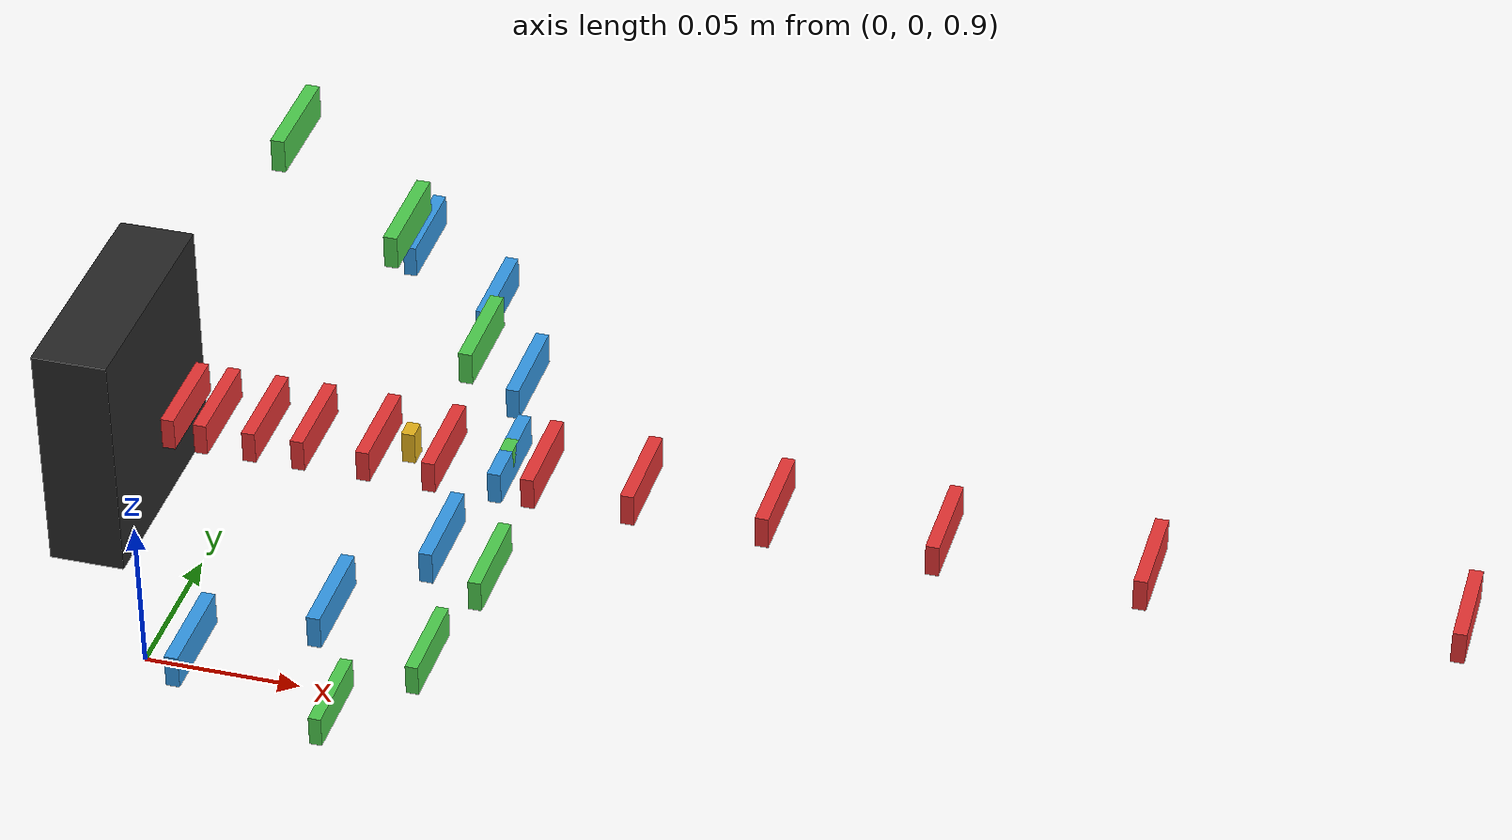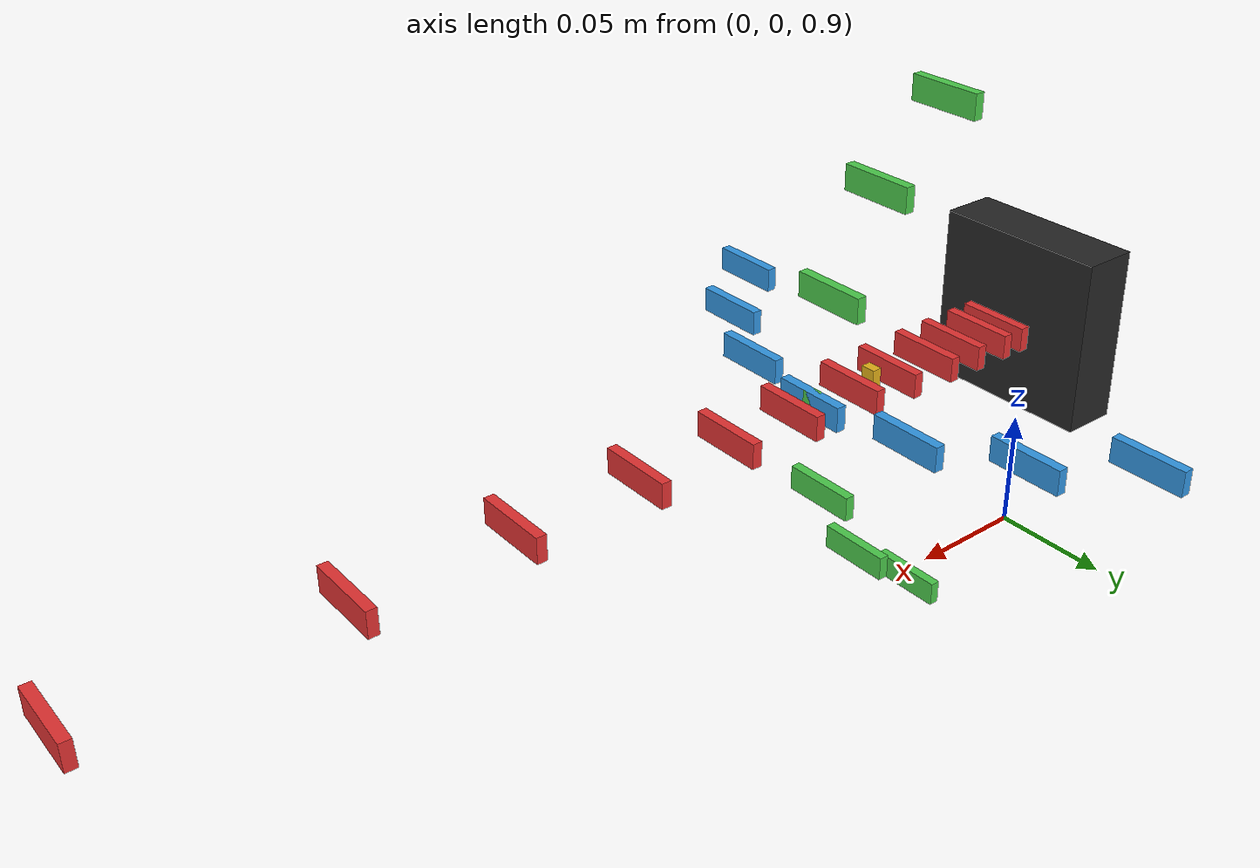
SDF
<?xml version="1.0" ?>
<sdf version="1.6">
  <world name="rfid_bench">

    <physics name="1ms" type="ignored">
      <max_step_size>0.001</max_step_size>
      <real_time_factor>1.0</real_time_factor>
    </physics>

    <plugin filename="ignition-gazebo-physics-system"
            name="ignition::gazebo::systems::Physics"/>
    <plugin filename="ignition-gazebo-user-commands-system"
            name="ignition::gazebo::systems::UserCommands"/>
    <plugin filename="ignition-gazebo-scene-broadcaster-system"
            name="ignition::gazebo::systems::SceneBroadcaster"/>

    <light type="directional" name="sun">
      <cast_shadows>true</cast_shadows>
      <pose>0 0 10 0 0 0</pose>
      <diffuse>0.8 0.8 0.8 1</diffuse>
      <specular>0.2 0.2 0.2 1</specular>
      <direction>-0.5 0.1 -0.9</direction>
    </light>

    <model name="ground_plane">
      <static>true</static>
      <link name="link">
        <collision name="collision">
          <geometry><plane><normal>0 0 1</normal><size>10 10</size></plane></geometry>
        </collision>
        <visual name="visual">
          <geometry><plane><normal>0 0 1</normal><size>10 10</size></plane></geometry>
          <material>
            <ambient>0.3 0.3 0.3 1</ambient>
            <diffuse>0.4 0.4 0.4 1</diffuse>
          </material>
        </visual>
      </link>
    </model>

    <model name="bench_fixture">
      <static>true</static>
      <pose>0 0 1.0 0 0 0</pose>
      <link name="mount">
        <visual name="visual">
          <!-- Iron is 72 x 72 x 23 mm, drawn to scale. The antenna is
               modeled as a point at the link origin; Test F corrects for
               that simplification. -->
          <geometry><box><size>0.023 0.072 0.072</size></box></geometry>
          <material>
            <ambient>0.1 0.1 0.1 1</ambient>
            <diffuse>0.15 0.15 0.15 1</diffuse>
          </material>
        </visual>
      </link>

      <plugin filename="RfidReader" name="rfid::RfidReader">
        <reader_id>vulcan_iron_bench</reader_id>
        <tag_prefix>rfid_tag_</tag_prefix>
        <update_rate>10</update_rate>
        <multiplex>true</multiplex>
        <max_range>0.6</max_range>     <!-- compute guard; past the ladder -->
        <pd_max>0.99</pd_max>
        <topic>/rfid/reads</topic>
        <seed>42</seed>

        <publish_tf>true</publish_tf>
        <tf_topic>/rfid/tf</tf_topic>
        <tf_position_noise_stddev>0.0</tf_position_noise_stddev>

        <power_topic>/rfid/set_power</power_topic>
        <p_ref>27.0</p_ref>
        <p_min>0.0</p_min>
        <p_max>27.0</p_max>
        <power_step>0.5</power_step>

        <rssi_noise_stddev>1.5</rssi_noise_stddev>
        <tag_offset_stddev>0.0</tag_offset_stddev>

        <!-- Harmless here (the bench knows its tag population), but kept
             false so the record path matches the mission one. -->
        <report_n_tags>false</report_n_tags>

        <antenna>
          <name>bench</name>            <!-- TF frame: rfid_antenna_bench -->
          <link>mount</link>
          <pose>0 0 0 0 0 0</pose>
          <r0>0.11</r0>
          <delta_theta_h>80</delta_theta_h>
          <delta_theta_v>80</delta_theta_v>
          <rssi_r0>-45.0</rssi_r0>
          <power_dbm>27.0</power_dbm>
        </antenna>
      </plugin>
    </model>

    <!-- ===================== RANGE LADDER (Test A) =====================
         Boresight, theta = 0. Geometric spacing so the PD transition is
         sampled at every power in the sweep. -->

    <model name="rfid_tag_lad_020"><static>true</static><pose>0.020 0 1.0 0 0 0</pose>
      <link name="tag_link"><visual name="visual">
        <geometry><box><size>0.004 0.03 0.01</size></box></geometry>
        <material><ambient>0.9 0.2 0.2 1</ambient><diffuse>0.9 0.2 0.2 1</diffuse></material>
      </visual></link></model>

    <model name="rfid_tag_lad_030"><static>true</static><pose>0.030 0 1.0 0 0 0</pose>
      <link name="tag_link"><visual name="visual">
        <geometry><box><size>0.004 0.03 0.01</size></box></geometry>
        <material><ambient>0.9 0.2 0.2 1</ambient><diffuse>0.9 0.2 0.2 1</diffuse></material>
      </visual></link></model>

    <model name="rfid_tag_lad_045"><static>true</static><pose>0.045 0 1.0 0 0 0</pose>
      <link name="tag_link"><visual name="visual">
        <geometry><box><size>0.004 0.03 0.01</size></box></geometry>
        <material><ambient>0.9 0.2 0.2 1</ambient><diffuse>0.9 0.2 0.2 1</diffuse></material>
      </visual></link></model>

    <model name="rfid_tag_lad_060"><static>true</static><pose>0.060 0 1.0 0 0 0</pose>
      <link name="tag_link"><visual name="visual">
        <geometry><box><size>0.004 0.03 0.01</size></box></geometry>
        <material><ambient>0.9 0.2 0.2 1</ambient><diffuse>0.9 0.2 0.2 1</diffuse></material>
      </visual></link></model>

    <model name="rfid_tag_lad_080"><static>true</static><pose>0.080 0 1.0 0 0 0</pose>
      <link name="tag_link"><visual name="visual">
        <geometry><box><size>0.004 0.03 0.01</size></box></geometry>
        <material><ambient>0.9 0.2 0.2 1</ambient><diffuse>0.9 0.2 0.2 1</diffuse></material>
      </visual></link></model>

    <model name="rfid_tag_lad_100"><static>true</static><pose>0.100 0 1.0 0 0 0</pose>
      <link name="tag_link"><visual name="visual">
        <geometry><box><size>0.004 0.03 0.01</size></box></geometry>
        <material><ambient>0.9 0.2 0.2 1</ambient><diffuse>0.9 0.2 0.2 1</diffuse></material>
      </visual></link></model>

    <model name="rfid_tag_lad_130"><static>true</static><pose>0.130 0 1.0 0 0 0</pose>
      <link name="tag_link"><visual name="visual">
        <geometry><box><size>0.004 0.03 0.01</size></box></geometry>
        <material><ambient>0.9 0.2 0.2 1</ambient><diffuse>0.9 0.2 0.2 1</diffuse></material>
      </visual></link></model>

    <model name="rfid_tag_lad_160"><static>true</static><pose>0.160 0 1.0 0 0 0</pose>
      <link name="tag_link"><visual name="visual">
        <geometry><box><size>0.004 0.03 0.01</size></box></geometry>
        <material><ambient>0.9 0.2 0.2 1</ambient><diffuse>0.9 0.2 0.2 1</diffuse></material>
      </visual></link></model>

    <model name="rfid_tag_lad_200"><static>true</static><pose>0.200 0 1.0 0 0 0</pose>
      <link name="tag_link"><visual name="visual">
        <geometry><box><size>0.004 0.03 0.01</size></box></geometry>
        <material><ambient>0.9 0.2 0.2 1</ambient><diffuse>0.9 0.2 0.2 1</diffuse></material>
      </visual></link></model>

    <model name="rfid_tag_lad_250"><static>true</static><pose>0.250 0 1.0 0 0 0</pose>
      <link name="tag_link"><visual name="visual">
        <geometry><box><size>0.004 0.03 0.01</size></box></geometry>
        <material><ambient>0.9 0.2 0.2 1</ambient><diffuse>0.9 0.2 0.2 1</diffuse></material>
      </visual></link></model>

    <model name="rfid_tag_lad_310"><static>true</static><pose>0.310 0 1.0 0 0 0</pose>
      <link name="tag_link"><visual name="visual">
        <geometry><box><size>0.004 0.03 0.01</size></box></geometry>
        <material><ambient>0.9 0.2 0.2 1</ambient><diffuse>0.9 0.2 0.2 1</diffuse></material>
      </visual></link></model>

    <model name="rfid_tag_lad_400"><static>true</static><pose>0.400 0 1.0 0 0 0</pose>
      <link name="tag_link"><visual name="visual">
        <geometry><box><size>0.004 0.03 0.01</size></box></geometry>
        <material><ambient>0.9 0.2 0.2 1</ambient><diffuse>0.9 0.2 0.2 1</diffuse></material>
      </visual></link></model>

    <!-- ===================== AZIMUTH ARC (Test D) =====================
         r = 0.12 m, theta_V = 0. Positions are r*(cos t, sin t, 0).     -->

    <model name="rfid_tag_haz_000"><static>true</static><pose>0.120000 0.000000 1.0 0 0 0</pose>
      <link name="tag_link"><visual name="visual">
        <geometry><box><size>0.004 0.03 0.01</size></box></geometry>
        <material><ambient>0.2 0.6 0.9 1</ambient><diffuse>0.2 0.6 0.9 1</diffuse></material>
      </visual></link></model>

    <model name="rfid_tag_haz_p20"><static>true</static><pose>0.112763 0.041042 1.0 0 0 0</pose>
      <link name="tag_link"><visual name="visual">
        <geometry><box><size>0.004 0.03 0.01</size></box></geometry>
        <material><ambient>0.2 0.6 0.9 1</ambient><diffuse>0.2 0.6 0.9 1</diffuse></material>
      </visual></link></model>

    <model name="rfid_tag_haz_n20"><static>true</static><pose>0.112763 -0.041042 1.0 0 0 0</pose>
      <link name="tag_link"><visual name="visual">
        <geometry><box><size>0.004 0.03 0.01</size></box></geometry>
        <material><ambient>0.2 0.6 0.9 1</ambient><diffuse>0.2 0.6 0.9 1</diffuse></material>
      </visual></link></model>

    <model name="rfid_tag_haz_p40"><static>true</static><pose>0.091925 0.077135 1.0 0 0 0</pose>
      <link name="tag_link"><visual name="visual">
        <geometry><box><size>0.004 0.03 0.01</size></box></geometry>
        <material><ambient>0.2 0.6 0.9 1</ambient><diffuse>0.2 0.6 0.9 1</diffuse></material>
      </visual></link></model>

    <model name="rfid_tag_haz_n40"><static>true</static><pose>0.091925 -0.077135 1.0 0 0 0</pose>
      <link name="tag_link"><visual name="visual">
        <geometry><box><size>0.004 0.03 0.01</size></box></geometry>
        <material><ambient>0.2 0.6 0.9 1</ambient><diffuse>0.2 0.6 0.9 1</diffuse></material>
      </visual></link></model>

    <model name="rfid_tag_haz_p60"><static>true</static><pose>0.060000 0.103923 1.0 0 0 0</pose>
      <link name="tag_link"><visual name="visual">
        <geometry><box><size>0.004 0.03 0.01</size></box></geometry>
        <material><ambient>0.2 0.6 0.9 1</ambient><diffuse>0.2 0.6 0.9 1</diffuse></material>
      </visual></link></model>

    <model name="rfid_tag_haz_n60"><static>true</static><pose>0.060000 -0.103923 1.0 0 0 0</pose>
      <link name="tag_link"><visual name="visual">
        <geometry><box><size>0.004 0.03 0.01</size></box></geometry>
        <material><ambient>0.2 0.6 0.9 1</ambient><diffuse>0.2 0.6 0.9 1</diffuse></material>
      </visual></link></model>

    <model name="rfid_tag_vel_000"><static>true</static><pose>0.120000 0 1.000000 0 0 0</pose>
      <link name="tag_link"><visual name="visual">
        <geometry><box><size>0.004 0.006 0.01</size></box></geometry>
        <material><ambient>0.3 0.8 0.3 1</ambient><diffuse>0.3 0.8 0.3 1</diffuse></material>
      </visual></link></model>

    <model name="rfid_tag_vel_p20"><static>true</static><pose>0.112763 0 1.041042 0 0 0</pose>
      <link name="tag_link"><visual name="visual">
        <geometry><box><size>0.004 0.03 0.01</size></box></geometry>
        <material><ambient>0.3 0.8 0.3 1</ambient><diffuse>0.3 0.8 0.3 1</diffuse></material>
      </visual></link></model>

    <model name="rfid_tag_vel_n20"><static>true</static><pose>0.112763 0 0.958958 0 0 0</pose>
      <link name="tag_link"><visual name="visual">
        <geometry><box><size>0.004 0.03 0.01</size></box></geometry>
        <material><ambient>0.3 0.8 0.3 1</ambient><diffuse>0.3 0.8 0.3 1</diffuse></material>
      </visual></link></model>

    <model name="rfid_tag_vel_p40"><static>true</static><pose>0.091925 0 1.077135 0 0 0</pose>
      <link name="tag_link"><visual name="visual">
        <geometry><box><size>0.004 0.03 0.01</size></box></geometry>
        <material><ambient>0.3 0.8 0.3 1</ambient><diffuse>0.3 0.8 0.3 1</diffuse></material>
      </visual></link></model>

    <model name="rfid_tag_vel_n40"><static>true</static><pose>0.091925 0 0.922865 0 0 0</pose>
      <link name="tag_link"><visual name="visual">
        <geometry><box><size>0.004 0.03 0.01</size></box></geometry>
        <material><ambient>0.3 0.8 0.3 1</ambient><diffuse>0.3 0.8 0.3 1</diffuse></material>
      </visual></link></model>

    <model name="rfid_tag_vel_p60"><static>true</static><pose>0.060000 0 1.103923 0 0 0</pose>
      <link name="tag_link"><visual name="visual">
        <geometry><box><size>0.004 0.03 0.01</size></box></geometry>
        <material><ambient>0.3 0.8 0.3 1</ambient><diffuse>0.3 0.8 0.3 1</diffuse></material>
      </visual></link></model>

    <model name="rfid_tag_vel_n60"><static>true</static><pose>0.060000 0 0.896077 0 0 0</pose>
      <link name="tag_link"><visual name="visual">
        <geometry><box><size>0.004 0.03 0.01</size></box></geometry>
        <material><ambient>0.3 0.8 0.3 1</ambient><diffuse>0.3 0.8 0.3 1</diffuse></material>
      </visual></link></model>

    <model name="rfid_tag_clu_00"><static>true</static><pose>0.090 0 1.0 0 0 0</pose>
      <link name="tag_link"><visual name="visual">
        <geometry><box><size>0.004 0.006 0.01</size></box></geometry>
        <material><ambient>0.9 0.7 0.1 1</ambient><diffuse>0.9 0.7 0.1 1</diffuse></material>
      </visual></link></model>

    <model name="rfid_tag_clu_01"><static>true</static><pose>0.090 0 1.0 0 0 0</pose>
      <link name="tag_link"><visual name="visual">
        <geometry><box><size>0.004 0.006 0.01</size></box></geometry>
        <material><ambient>0.9 0.7 0.1 1</ambient><diffuse>0.9 0.7 0.1 1</diffuse></material>
      </visual></link></model>

    <model name="rfid_tag_clu_02"><static>true</static><pose>0.090 0 1.0 0 0 0</pose>
      <link name="tag_link"><visual name="visual">
        <geometry><box><size>0.004 0.006 0.01</size></box></geometry>
        <material><ambient>0.9 0.7 0.1 1</ambient><diffuse>0.9 0.7 0.1 1</diffuse></material>
      </visual></link></model>

    <model name="rfid_tag_clu_03"><static>true</static><pose>0.090 0 1.0 0 0 0</pose>
      <link name="tag_link"><visual name="visual">
        <geometry><box><size>0.004 0.006 0.01</size></box></geometry>
        <material><ambient>0.9 0.7 0.1 1</ambient><diffuse>0.9 0.7 0.1 1</diffuse></material>
      </visual></link></model>

    <model name="rfid_tag_clu_04"><static>true</static><pose>0.090 0 1.0 0 0 0</pose>
      <link name="tag_link"><visual name="visual">
        <geometry><box><size>0.004 0.006 0.01</size></box></geometry>
        <material><ambient>0.9 0.7 0.1 1</ambient><diffuse>0.9 0.7 0.1 1</diffuse></material>
      </visual></link></model>

    <model name="rfid_tag_clu_05"><static>true</static><pose>0.090 0 1.0 0 0 0</pose>
      <link name="tag_link"><visual name="visual">
        <geometry><box><size>0.004 0.006 0.01</size></box></geometry>
        <material><ambient>0.9 0.7 0.1 1</ambient><diffuse>0.9 0.7 0.1 1</diffuse></material>
      </visual></link></model>

    <model name="rfid_tag_clu_06"><static>true</static><pose>0.090 0 1.0 0 0 0</pose>
      <link name="tag_link"><visual name="visual">
        <geometry><box><size>0.004 0.006 0.01</size></box></geometry>
        <material><ambient>0.9 0.7 0.1 1</ambient><diffuse>0.9 0.7 0.1 1</diffuse></material>
      </visual></link></model>

    <model name="rfid_tag_clu_07"><static>true</static><pose>0.090 0 1.0 0 0 0</pose>
      <link name="tag_link"><visual name="visual">
        <geometry><box><size>0.004 0.006 0.01</size></box></geometry>
        <material><ambient>0.9 0.7 0.1 1</ambient><diffuse>0.9 0.7 0.1 1</diffuse></material>
      </visual></link></model>

  </world>
</sdf>
